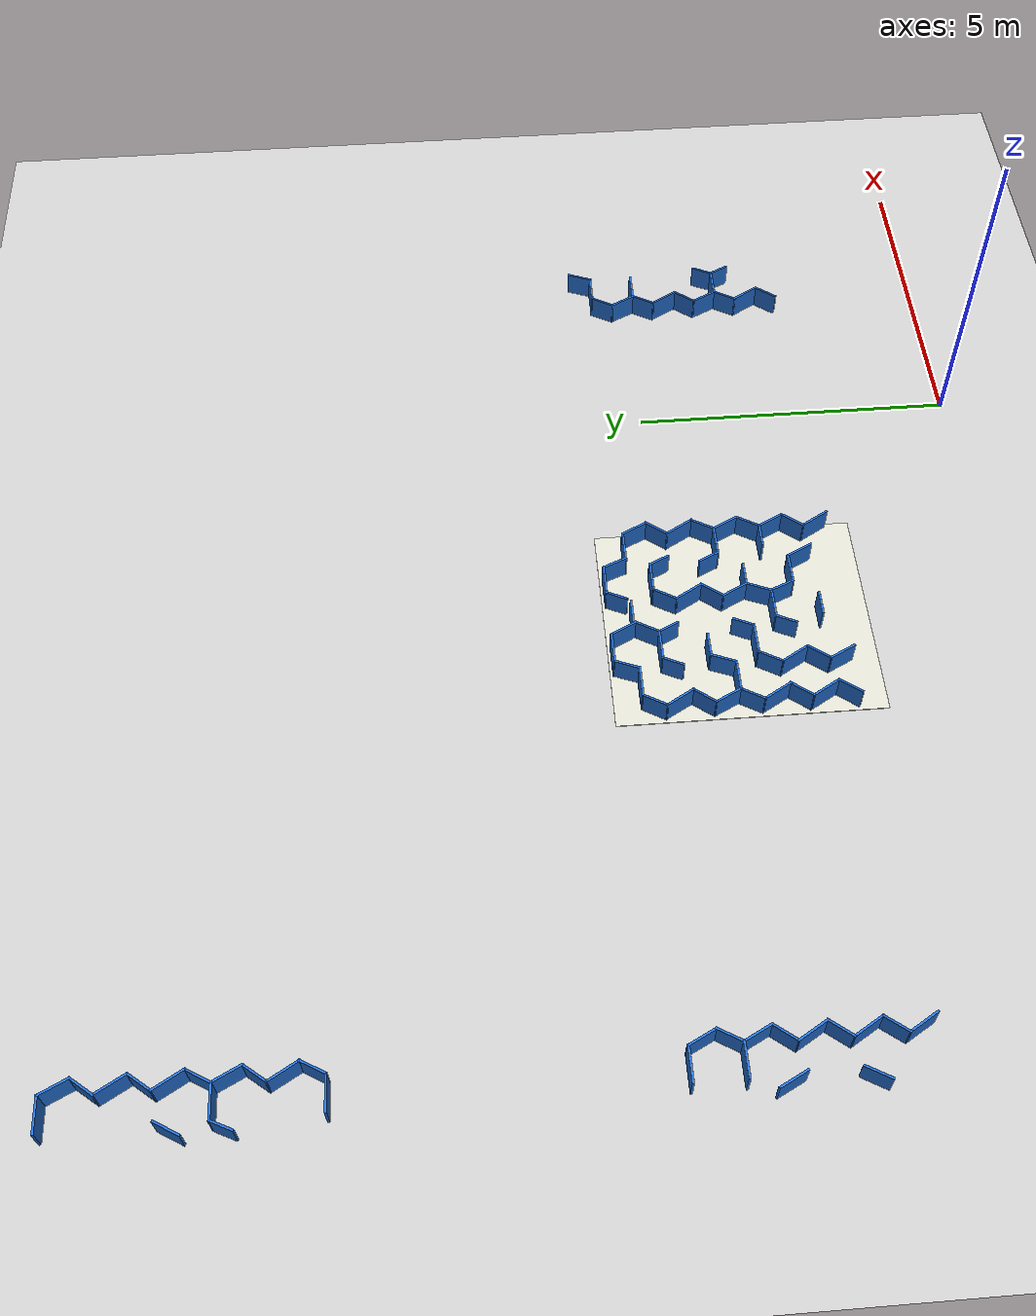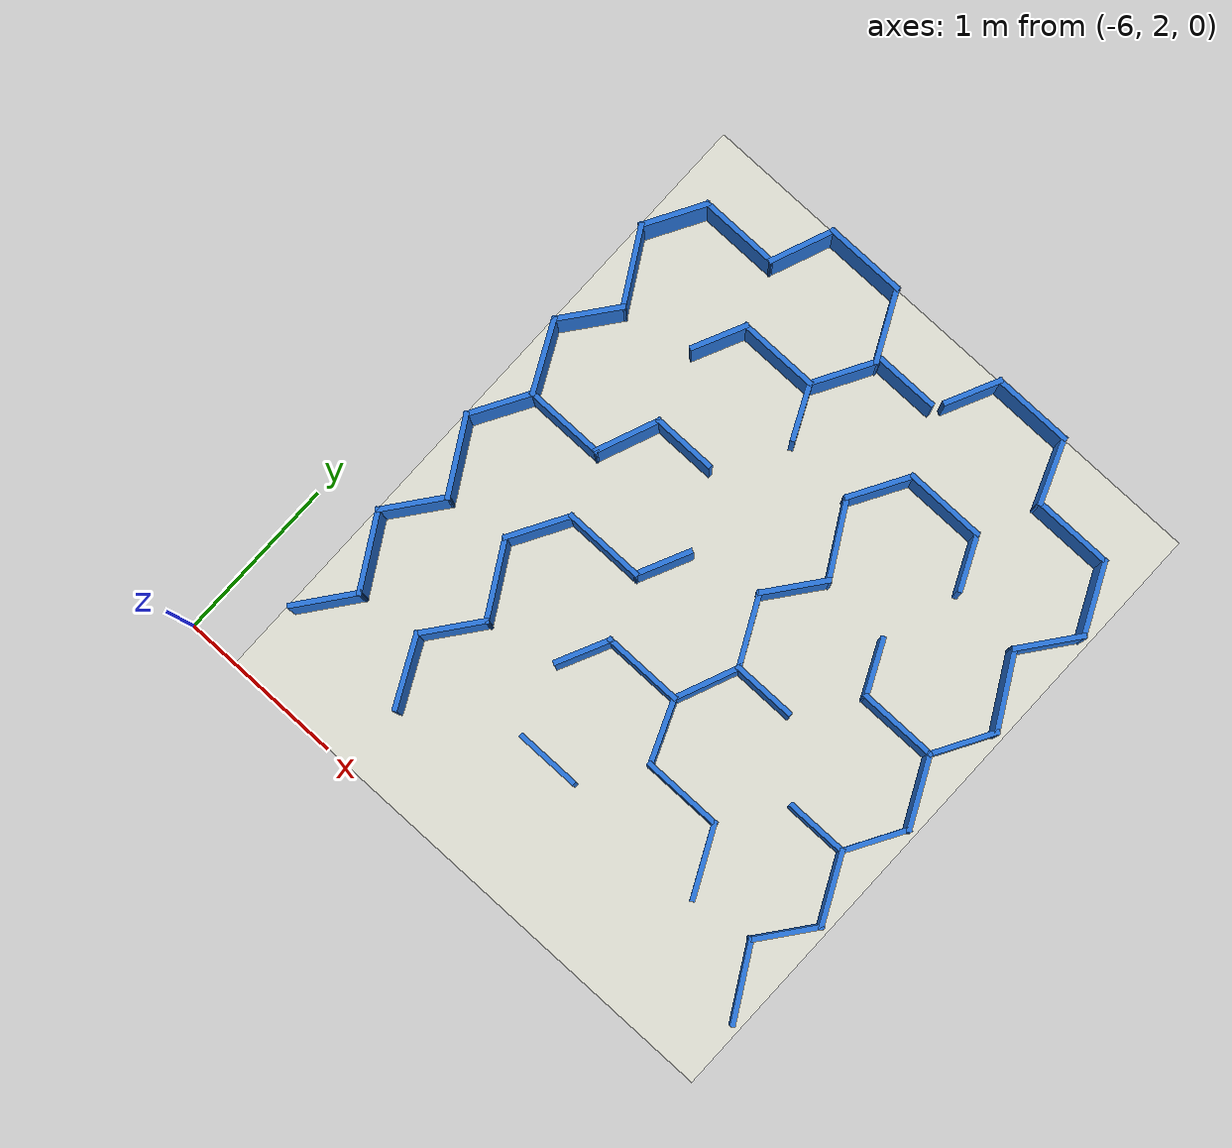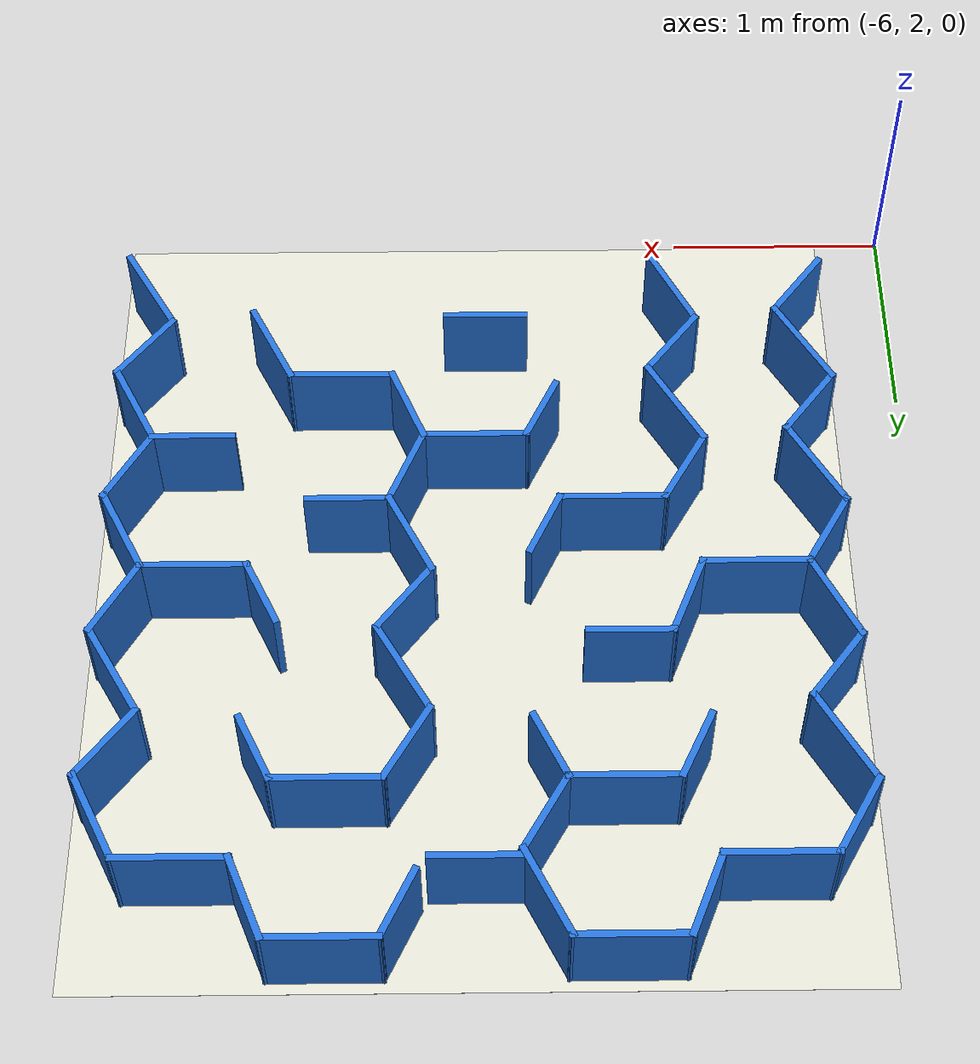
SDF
<sdf version="1.10">
 <world name="nhom8_maze_multi">
  <model name="ground_plane">
   <static>true</static>
   <link name="link">
    <collision name="collision">
     <geometry><plane><normal>0 0 1</normal><size>80.0 80.0</size></plane></geometry>
     <surface><friction><ode><mu>40</mu></ode></friction></surface>
    </collision>
    <visual name="visual">
     <geometry><plane><normal>0 0 1</normal><size>80.0 80.0</size></plane></geometry>
     <material>
      <ambient>0.8 0.8 0.8 1</ambient>
      <diffuse>0.8 0.8 0.8 1</diffuse>
      <specular>0.8 0.8 0.8 1</specular>
     </material>
    </visual>
   </link>
  </model>
  <model name="sigma_1_wall_003">
   <static>true</static>
   <pose>-10.782750 5.585700 0.2000 0 0 0.000000</pose>
   <link name="link">
    <collision name="col"><geometry><box><size>0.4973 0.0300 0.4000</size></box></geometry></collision>
    <visual name="vis">
     <geometry><box><size>0.4973 0.0300 0.4000</size></box></geometry>
     <material><ambient>0.15 0.45 0.85 1</ambient><diffuse>0.15 0.45 0.85 1</diffuse></material>
    </visual>
   </link>
  </model>
  <model name="sigma_1_wall_006">
   <static>true</static>
   <pose>-10.784100 4.885000 0.2000 0 0 0.000000</pose>
   <link name="link">
    <collision name="col"><geometry><box><size>0.4964 0.0300 0.4000</size></box></geometry></collision>
    <visual name="vis">
     <geometry><box><size>0.4964 0.0300 0.4000</size></box></geometry>
     <material><ambient>0.15 0.45 0.85 1</ambient><diffuse>0.15 0.45 0.85 1</diffuse></material>
    </visual>
   </link>
  </model>
  <model name="sigma_1_wall_018">
   <static>true</static>
   <pose>-10.456050 5.396800 0.2000 0 0 -1.113098</pose>
   <link name="link">
    <collision name="col"><geometry><box><size>0.4510 0.0300 0.4000</size></box></geometry></collision>
    <visual name="vis">
     <geometry><box><size>0.4510 0.0300 0.4000</size></box></geometry>
     <material><ambient>0.15 0.45 0.85 1</ambient><diffuse>0.15 0.45 0.85 1</diffuse></material>
    </visual>
   </link>
  </model>
  <model name="sigma_1_wall_020">
   <static>true</static>
   <pose>-10.456400 4.695000 0.2000 0 0 -1.109117</pose>
   <link name="link">
    <collision name="col"><geometry><box><size>0.4544 0.0300 0.4000</size></box></geometry></collision>
    <visual name="vis">
     <geometry><box><size>0.4544 0.0300 0.4000</size></box></geometry>
     <material><ambient>0.15 0.45 0.85 1</ambient><diffuse>0.15 0.45 0.85 1</diffuse></material>
    </visual>
   </link>
  </model>
  <model name="sigma_1_wall_022">
   <static>true</static>
   <pose>-10.477650 4.002950 0.2000 0 0 -1.047161</pose>
   <link name="link">
    <collision name="col"><geometry><box><size>0.4946 0.0300 0.4000</size></box></geometry></collision>
    <visual name="vis">
     <geometry><box><size>0.4946 0.0300 0.4000</size></box></geometry>
     <material><ambient>0.15 0.45 0.85 1</ambient><diffuse>0.15 0.45 0.85 1</diffuse></material>
    </visual>
   </link>
  </model>
  <model name="sigma_1_wall_023">
   <static>true</static>
   <pose>-11.064350 4.341900 0.2000 0 0 -1.111119</pose>
   <link name="link">
    <collision name="col"><geometry><box><size>0.4506 0.0300 0.4000</size></box></geometry></collision>
    <visual name="vis">
     <geometry><box><size>0.4506 0.0300 0.4000</size></box></geometry>
     <material><ambient>0.15 0.45 0.85 1</ambient><diffuse>0.15 0.45 0.85 1</diffuse></material>
    </visual>
   </link>
  </model>
  <model name="sigma_1_wall_024">
   <static>true</static>
   <pose>-10.478650 3.300350 0.2000 0 0 -1.047161</pose>
   <link name="link">
    <collision name="col"><geometry><box><size>0.4946 0.0300 0.4000</size></box></geometry></collision>
    <visual name="vis">
     <geometry><box><size>0.4946 0.0300 0.4000</size></box></geometry>
     <material><ambient>0.15 0.45 0.85 1</ambient><diffuse>0.15 0.45 0.85 1</diffuse></material>
    </visual>
   </link>
  </model>
  <model name="sigma_1_wall_028">
   <static>true</static>
   <pose>-10.477850 2.597050 0.2000 0 0 -1.047171</pose>
   <link name="link">
    <collision name="col"><geometry><box><size>0.4902 0.0300 0.4000</size></box></geometry></collision>
    <visual name="vis">
     <geometry><box><size>0.4902 0.0300 0.4000</size></box></geometry>
     <material><ambient>0.15 0.45 0.85 1</ambient><diffuse>0.15 0.45 0.85 1</diffuse></material>
    </visual>
   </link>
  </model>
  <model name="sigma_1_wall_043">
   <static>true</static>
   <pose>-10.477700 2.947750 0.2000 0 0 0.920329</pose>
   <link name="link">
    <collision name="col"><geometry><box><size>0.4105 0.0300 0.4000</size></box></geometry></collision>
    <visual name="vis">
     <geometry><box><size>0.4105 0.0300 0.4000</size></box></geometry>
     <material><ambient>0.15 0.45 0.85 1</ambient><diffuse>0.15 0.45 0.85 1</diffuse></material>
    </visual>
   </link>
  </model>
  <model name="sigma_1_wall_044">
   <static>true</static>
   <pose>-10.478150 3.651650 0.2000 0 0 0.910181</pose>
   <link name="link">
    <collision name="col"><geometry><box><size>0.4102 0.0300 0.4000</size></box></geometry></collision>
    <visual name="vis">
     <geometry><box><size>0.4102 0.0300 0.4000</size></box></geometry>
     <material><ambient>0.15 0.45 0.85 1</ambient><diffuse>0.15 0.45 0.85 1</diffuse></material>
    </visual>
   </link>
  </model>
  <model name="sigma_1_wall_046">
   <static>true</static>
   <pose>-10.477800 4.354550 0.2000 0 0 0.914268</pose>
   <link name="link">
    <collision name="col"><geometry><box><size>0.4099 0.0300 0.4000</size></box></geometry></collision>
    <visual name="vis">
     <geometry><box><size>0.4099 0.0300 0.4000</size></box></geometry>
     <material><ambient>0.15 0.45 0.85 1</ambient><diffuse>0.15 0.45 0.85 1</diffuse></material>
    </visual>
   </link>
  </model>
  <model name="sigma_1_wall_047">
   <static>true</static>
   <pose>-11.064250 3.288650 0.2000 0 0 1.056382</pose>
   <link name="link">
    <collision name="col"><geometry><box><size>0.4063 0.0300 0.4000</size></box></geometry></collision>
    <visual name="vis">
     <geometry><box><size>0.4063 0.0300 0.4000</size></box></geometry>
     <material><ambient>0.15 0.45 0.85 1</ambient><diffuse>0.15 0.45 0.85 1</diffuse></material>
    </visual>
   </link>
  </model>
  <model name="sigma_1_wall_049">
   <static>true</static>
   <pose>-10.456950 5.046450 0.2000 0 0 1.044059</pose>
   <link name="link">
    <collision name="col"><geometry><box><size>0.4036 0.0300 0.4000</size></box></geometry></collision>
    <visual name="vis">
     <geometry><box><size>0.4036 0.0300 0.4000</size></box></geometry>
     <material><ambient>0.15 0.45 0.85 1</ambient><diffuse>0.15 0.45 0.85 1</diffuse></material>
    </visual>
   </link>
  </model>
  <model name="sigma_2_wall_000">
   <static>true</static>
   <pose>-4.609350 5.935000 0.2000 0 0 0.000000</pose>
   <link name="link">
    <collision name="col"><geometry><box><size>0.4973 0.0300 0.4000</size></box></geometry></collision>
    <visual name="vis">
     <geometry><box><size>0.4973 0.0300 0.4000</size></box></geometry>
     <material><ambient>0.15 0.45 0.85 1</ambient><diffuse>0.15 0.45 0.85 1</diffuse></material>
    </visual>
   </link>
  </model>
  <model name="sigma_2_wall_001">
   <static>true</static>
   <pose>-3.389950 5.935000 0.2000 0 0 0.000000</pose>
   <link name="link">
    <collision name="col"><geometry><box><size>0.4965 0.0300 0.4000</size></box></geometry></collision>
    <visual name="vis">
     <geometry><box><size>0.4965 0.0300 0.4000</size></box></geometry>
     <material><ambient>0.15 0.45 0.85 1</ambient><diffuse>0.15 0.45 0.85 1</diffuse></material>
    </visual>
   </link>
  </model>
  <model name="sigma_2_wall_002">
   <static>true</static>
   <pose>-5.215300 5.585700 0.2000 0 0 0.000000</pose>
   <link name="link">
    <collision name="col"><geometry><box><size>0.4950 0.0300 0.4000</size></box></geometry></collision>
    <visual name="vis">
     <geometry><box><size>0.4950 0.0300 0.4000</size></box></geometry>
     <material><ambient>0.15 0.45 0.85 1</ambient><diffuse>0.15 0.45 0.85 1</diffuse></material>
    </visual>
   </link>
  </model>
  <model name="sigma_2_wall_003">
   <static>true</static>
   <pose>-2.782650 5.585700 0.2000 0 0 0.000000</pose>
   <link name="link">
    <collision name="col"><geometry><box><size>0.4971 0.0300 0.4000</size></box></geometry></collision>
    <visual name="vis">
     <geometry><box><size>0.4971 0.0300 0.4000</size></box></geometry>
     <material><ambient>0.15 0.45 0.85 1</ambient><diffuse>0.15 0.45 0.85 1</diffuse></material>
    </visual>
   </link>
  </model>
  <model name="sigma_2_wall_004">
   <static>true</static>
   <pose>-4.609400 5.230700 0.2000 0 0 0.000000</pose>
   <link name="link">
    <collision name="col"><geometry><box><size>0.4962 0.0300 0.4000</size></box></geometry></collision>
    <visual name="vis">
     <geometry><box><size>0.4962 0.0300 0.4000</size></box></geometry>
     <material><ambient>0.15 0.45 0.85 1</ambient><diffuse>0.15 0.45 0.85 1</diffuse></material>
    </visual>
   </link>
  </model>
  <model name="sigma_2_wall_005">
   <static>true</static>
   <pose>-3.390200 5.230700 0.2000 0 0 0.000000</pose>
   <link name="link">
    <collision name="col"><geometry><box><size>0.4958 0.0300 0.4000</size></box></geometry></collision>
    <visual name="vis">
     <geometry><box><size>0.4958 0.0300 0.4000</size></box></geometry>
     <material><ambient>0.15 0.45 0.85 1</ambient><diffuse>0.15 0.45 0.85 1</diffuse></material>
    </visual>
   </link>
  </model>
  <model name="sigma_2_wall_006">
   <static>true</static>
   <pose>-4.660800 4.529300 0.2000 0 0 0.000000</pose>
   <link name="link">
    <collision name="col"><geometry><box><size>0.3934 0.0300 0.4000</size></box></geometry></collision>
    <visual name="vis">
     <geometry><box><size>0.3934 0.0300 0.4000</size></box></geometry>
     <material><ambient>0.15 0.45 0.85 1</ambient><diffuse>0.15 0.45 0.85 1</diffuse></material>
    </visual>
   </link>
  </model>
  <model name="sigma_2_wall_007">
   <static>true</static>
   <pose>-5.216550 4.177700 0.2000 0 0 0.000000</pose>
   <link name="link">
    <collision name="col"><geometry><box><size>0.4945 0.0300 0.4000</size></box></geometry></collision>
    <visual name="vis">
     <geometry><box><size>0.4945 0.0300 0.4000</size></box></geometry>
     <material><ambient>0.15 0.45 0.85 1</ambient><diffuse>0.15 0.45 0.85 1</diffuse></material>
    </visual>
   </link>
  </model>
  <model name="sigma_2_wall_008">
   <static>true</static>
   <pose>-2.781750 4.177700 0.2000 0 0 0.000000</pose>
   <link name="link">
    <collision name="col"><geometry><box><size>0.4919 0.0300 0.4000</size></box></geometry></collision>
    <visual name="vis">
     <geometry><box><size>0.4919 0.0300 0.4000</size></box></geometry>
     <material><ambient>0.15 0.45 0.85 1</ambient><diffuse>0.15 0.45 0.85 1</diffuse></material>
    </visual>
   </link>
  </model>
  <model name="sigma_2_wall_009">
   <static>true</static>
   <pose>-4.607350 3.828700 0.2000 0 0 0.000000</pose>
   <link name="link">
    <collision name="col"><geometry><box><size>0.4975 0.0300 0.4000</size></box></geometry></collision>
    <visual name="vis">
     <geometry><box><size>0.4975 0.0300 0.4000</size></box></geometry>
     <material><ambient>0.15 0.45 0.85 1</ambient><diffuse>0.15 0.45 0.85 1</diffuse></material>
    </visual>
   </link>
  </model>
  <model name="sigma_2_wall_010">
   <static>true</static>
   <pose>-3.440050 3.828700 0.2000 0 0 0.000000</pose>
   <link name="link">
    <collision name="col"><geometry><box><size>0.3931 0.0300 0.4000</size></box></geometry></collision>
    <visual name="vis">
     <geometry><box><size>0.3931 0.0300 0.4000</size></box></geometry>
     <material><ambient>0.15 0.45 0.85 1</ambient><diffuse>0.15 0.45 0.85 1</diffuse></material>
    </visual>
   </link>
  </model>
  <model name="sigma_2_wall_011">
   <static>true</static>
   <pose>-4.000650 3.474800 0.2000 0 0 0.000000</pose>
   <link name="link">
    <collision name="col"><geometry><box><size>0.4945 0.0300 0.4000</size></box></geometry></collision>
    <visual name="vis">
     <geometry><box><size>0.4945 0.0300 0.4000</size></box></geometry>
     <material><ambient>0.15 0.45 0.85 1</ambient><diffuse>0.15 0.45 0.85 1</diffuse></material>
    </visual>
   </link>
  </model>
  <model name="sigma_2_wall_012">
   <static>true</static>
   <pose>-2.730700 3.474800 0.2000 0 0 0.000000</pose>
   <link name="link">
    <collision name="col"><geometry><box><size>0.3898 0.0300 0.4000</size></box></geometry></collision>
    <visual name="vis">
     <geometry><box><size>0.3898 0.0300 0.4000</size></box></geometry>
     <material><ambient>0.15 0.45 0.85 1</ambient><diffuse>0.15 0.45 0.85 1</diffuse></material>
    </visual>
   </link>
  </model>
  <model name="sigma_2_wall_013">
   <static>true</static>
   <pose>-3.390000 3.124400 0.2000 0 0 0.000000</pose>
   <link name="link">
    <collision name="col"><geometry><box><size>0.4964 0.0300 0.4000</size></box></geometry></collision>
    <visual name="vis">
     <geometry><box><size>0.4964 0.0300 0.4000</size></box></geometry>
     <material><ambient>0.15 0.45 0.85 1</ambient><diffuse>0.15 0.45 0.85 1</diffuse></material>
    </visual>
   </link>
  </model>
  <model name="sigma_2_wall_014">
   <static>true</static>
   <pose>-4.050600 2.772600 0.2000 0 0 0.000000</pose>
   <link name="link">
    <collision name="col"><geometry><box><size>0.3936 0.0300 0.4000</size></box></geometry></collision>
    <visual name="vis">
     <geometry><box><size>0.3936 0.0300 0.4000</size></box></geometry>
     <material><ambient>0.15 0.45 0.85 1</ambient><diffuse>0.15 0.45 0.85 1</diffuse></material>
    </visual>
   </link>
  </model>
  <model name="sigma_2_wall_019">
   <static>true</static>
   <pose>-2.456000 5.396700 0.2000 0 0 -1.113095</pose>
   <link name="link">
    <collision name="col"><geometry><box><size>0.4512 0.0300 0.4000</size></box></geometry></collision>
    <visual name="vis">
     <geometry><box><size>0.4512 0.0300 0.4000</size></box></geometry>
     <material><ambient>0.15 0.45 0.85 1</ambient><diffuse>0.15 0.45 0.85 1</diffuse></material>
    </visual>
   </link>
  </model>
  <model name="sigma_2_wall_020">
   <static>true</static>
   <pose>-3.086450 5.760300 0.2000 0 0 -1.188417</pose>
   <link name="link">
    <collision name="col"><geometry><box><size>0.4066 0.0300 0.4000</size></box></geometry></collision>
    <visual name="vis">
     <geometry><box><size>0.4066 0.0300 0.4000</size></box></geometry>
     <material><ambient>0.15 0.45 0.85 1</ambient><diffuse>0.15 0.45 0.85 1</diffuse></material>
    </visual>
   </link>
  </model>
  <model name="sigma_2_wall_021">
   <static>true</static>
   <pose>-2.477700 4.706150 0.2000 0 0 -1.047213</pose>
   <link name="link">
    <collision name="col"><geometry><box><size>0.4920 0.0300 0.4000</size></box></geometry></collision>
    <visual name="vis">
     <geometry><box><size>0.4920 0.0300 0.4000</size></box></geometry>
     <material><ambient>0.15 0.45 0.85 1</ambient><diffuse>0.15 0.45 0.85 1</diffuse></material>
    </visual>
   </link>
  </model>
  <model name="sigma_2_wall_022">
   <static>true</static>
   <pose>-3.089650 5.087700 0.2000 0 0 -1.129095</pose>
   <link name="link">
    <collision name="col"><geometry><box><size>0.3465 0.0300 0.4000</size></box></geometry></collision>
    <visual name="vis">
     <geometry><box><size>0.3465 0.0300 0.4000</size></box></geometry>
     <material><ambient>0.15 0.45 0.85 1</ambient><diffuse>0.15 0.45 0.85 1</diffuse></material>
    </visual>
   </link>
  </model>
  <model name="sigma_2_wall_023">
   <static>true</static>
   <pose>-2.456150 3.989300 0.2000 0 0 -1.104971</pose>
   <link name="link">
    <collision name="col"><geometry><box><size>0.4517 0.0300 0.4000</size></box></geometry></collision>
    <visual name="vis">
     <geometry><box><size>0.4517 0.0300 0.4000</size></box></geometry>
     <material><ambient>0.15 0.45 0.85 1</ambient><diffuse>0.15 0.45 0.85 1</diffuse></material>
    </visual>
   </link>
  </model>
  <model name="sigma_2_wall_024">
   <static>true</static>
   <pose>-3.082050 4.322550 0.2000 0 0 -1.124088</pose>
   <link name="link">
    <collision name="col"><geometry><box><size>0.3512 0.0300 0.4000</size></box></geometry></collision>
    <visual name="vis">
     <geometry><box><size>0.3512 0.0300 0.4000</size></box></geometry>
     <material><ambient>0.15 0.45 0.85 1</ambient><diffuse>0.15 0.45 0.85 1</diffuse></material>
    </visual>
   </link>
  </model>
  <model name="sigma_2_wall_025">
   <static>true</static>
   <pose>-2.456000 3.286800 0.2000 0 0 -1.103580</pose>
   <link name="link">
    <collision name="col"><geometry><box><size>0.4512 0.0300 0.4000</size></box></geometry></collision>
    <visual name="vis">
     <geometry><box><size>0.4512 0.0300 0.4000</size></box></geometry>
     <material><ambient>0.15 0.45 0.85 1</ambient><diffuse>0.15 0.45 0.85 1</diffuse></material>
    </visual>
   </link>
  </model>
  <model name="sigma_2_wall_026">
   <static>true</static>
   <pose>-4.282150 5.747350 0.2000 0 0 -1.108244</pose>
   <link name="link">
    <collision name="col"><geometry><box><size>0.4493 0.0300 0.4000</size></box></geometry></collision>
    <visual name="vis">
     <geometry><box><size>0.4493 0.0300 0.4000</size></box></geometry>
     <material><ambient>0.15 0.45 0.85 1</ambient><diffuse>0.15 0.45 0.85 1</diffuse></material>
    </visual>
   </link>
  </model>
  <model name="sigma_2_wall_027">
   <static>true</static>
   <pose>-3.695450 4.705400 0.2000 0 0 -1.047233</pose>
   <link name="link">
    <collision name="col"><geometry><box><size>0.4914 0.0300 0.4000</size></box></geometry></collision>
    <visual name="vis">
     <geometry><box><size>0.4914 0.0300 0.4000</size></box></geometry>
     <material><ambient>0.15 0.45 0.85 1</ambient><diffuse>0.15 0.45 0.85 1</diffuse></material>
    </visual>
   </link>
  </model>
  <model name="sigma_2_wall_028">
   <static>true</static>
   <pose>-2.478050 2.596950 0.2000 0 0 -1.047171</pose>
   <link name="link">
    <collision name="col"><geometry><box><size>0.4902 0.0300 0.4000</size></box></geometry></collision>
    <visual name="vis">
     <geometry><box><size>0.4902 0.0300 0.4000</size></box></geometry>
     <material><ambient>0.15 0.45 0.85 1</ambient><diffuse>0.15 0.45 0.85 1</diffuse></material>
    </visual>
   </link>
  </model>
  <model name="sigma_2_wall_029">
   <static>true</static>
   <pose>-4.307550 5.087500 0.2000 0 0 -1.123619</pose>
   <link name="link">
    <collision name="col"><geometry><box><size>0.3476 0.0300 0.4000</size></box></geometry></collision>
    <visual name="vis">
     <geometry><box><size>0.3476 0.0300 0.4000</size></box></geometry>
     <material><ambient>0.15 0.45 0.85 1</ambient><diffuse>0.15 0.45 0.85 1</diffuse></material>
    </visual>
   </link>
  </model>
  <model name="sigma_2_wall_030">
   <static>true</static>
   <pose>-3.716600 4.016450 0.2000 0 0 -1.102289</pose>
   <link name="link">
    <collision name="col"><geometry><box><size>0.4509 0.0300 0.4000</size></box></geometry></collision>
    <visual name="vis">
     <geometry><box><size>0.4509 0.0300 0.4000</size></box></geometry>
     <material><ambient>0.15 0.45 0.85 1</ambient><diffuse>0.15 0.45 0.85 1</diffuse></material>
    </visual>
   </link>
  </model>
  <model name="sigma_2_wall_031">
   <static>true</static>
   <pose>-3.063250 2.935250 0.2000 0 0 -1.111205</pose>
   <link name="link">
    <collision name="col"><geometry><box><size>0.4520 0.0300 0.4000</size></box></geometry></collision>
    <visual name="vis">
     <geometry><box><size>0.4520 0.0300 0.4000</size></box></geometry>
     <material><ambient>0.15 0.45 0.85 1</ambient><diffuse>0.15 0.45 0.85 1</diffuse></material>
    </visual>
   </link>
  </model>
  <model name="sigma_2_wall_032">
   <static>true</static>
   <pose>-3.695850 3.299600 0.2000 0 0 -1.177997</pose>
   <link name="link">
    <collision name="col"><geometry><box><size>0.4094 0.0300 0.4000</size></box></geometry></collision>
    <visual name="vis">
     <geometry><box><size>0.4094 0.0300 0.4000</size></box></geometry>
     <material><ambient>0.15 0.45 0.85 1</ambient><diffuse>0.15 0.45 0.85 1</diffuse></material>
    </visual>
   </link>
  </model>
  <model name="sigma_2_wall_034">
   <static>true</static>
   <pose>-5.521050 5.056700 0.2000 0 0 -1.047233</pose>
   <link name="link">
    <collision name="col"><geometry><box><size>0.4914 0.0300 0.4000</size></box></geometry></collision>
    <visual name="vis">
     <geometry><box><size>0.4914 0.0300 0.4000</size></box></geometry>
     <material><ambient>0.15 0.45 0.85 1</ambient><diffuse>0.15 0.45 0.85 1</diffuse></material>
    </visual>
   </link>
  </model>
  <model name="sigma_2_wall_035">
   <static>true</static>
   <pose>-5.543250 4.366850 0.2000 0 0 -1.107643</pose>
   <link name="link">
    <collision name="col"><geometry><box><size>0.4528 0.0300 0.4000</size></box></geometry></collision>
    <visual name="vis">
     <geometry><box><size>0.4528 0.0300 0.4000</size></box></geometry>
     <material><ambient>0.15 0.45 0.85 1</ambient><diffuse>0.15 0.45 0.85 1</diffuse></material>
    </visual>
   </link>
  </model>
  <model name="sigma_2_wall_036">
   <static>true</static>
   <pose>-4.912550 3.300200 0.2000 0 0 -1.047248</pose>
   <link name="link">
    <collision name="col"><geometry><box><size>0.4930 0.0300 0.4000</size></box></geometry></collision>
    <visual name="vis">
     <geometry><box><size>0.4930 0.0300 0.4000</size></box></geometry>
     <material><ambient>0.15 0.45 0.85 1</ambient><diffuse>0.15 0.45 0.85 1</diffuse></material>
    </visual>
   </link>
  </model>
  <model name="sigma_2_wall_038">
   <static>true</static>
   <pose>-5.521550 3.652150 0.2000 0 0 -1.047146</pose>
   <link name="link">
    <collision name="col"><geometry><box><size>0.4930 0.0300 0.4000</size></box></geometry></collision>
    <visual name="vis">
     <geometry><box><size>0.4930 0.0300 0.4000</size></box></geometry>
     <material><ambient>0.15 0.45 0.85 1</ambient><diffuse>0.15 0.45 0.85 1</diffuse></material>
    </visual>
   </link>
  </model>
  <model name="sigma_2_wall_039">
   <static>true</static>
   <pose>-4.933800 2.608550 0.2000 0 0 -1.107445</pose>
   <link name="link">
    <collision name="col"><geometry><box><size>0.4524 0.0300 0.4000</size></box></geometry></collision>
    <visual name="vis">
     <geometry><box><size>0.4524 0.0300 0.4000</size></box></geometry>
     <material><ambient>0.15 0.45 0.85 1</ambient><diffuse>0.15 0.45 0.85 1</diffuse></material>
    </visual>
   </link>
  </model>
  <model name="sigma_2_wall_040">
   <static>true</static>
   <pose>-5.521850 2.949250 0.2000 0 0 -1.047092</pose>
   <link name="link">
    <collision name="col"><geometry><box><size>0.4925 0.0300 0.4000</size></box></geometry></collision>
    <visual name="vis">
     <geometry><box><size>0.4925 0.0300 0.4000</size></box></geometry>
     <material><ambient>0.15 0.45 0.85 1</ambient><diffuse>0.15 0.45 0.85 1</diffuse></material>
    </visual>
   </link>
  </model>
  <model name="sigma_2_wall_043">
   <static>true</static>
   <pose>-2.477150 2.947500 0.2000 0 0 0.916598</pose>
   <link name="link">
    <collision name="col"><geometry><box><size>0.4113 0.0300 0.4000</size></box></geometry></collision>
    <visual name="vis">
     <geometry><box><size>0.4113 0.0300 0.4000</size></box></geometry>
     <material><ambient>0.15 0.45 0.85 1</ambient><diffuse>0.15 0.45 0.85 1</diffuse></material>
    </visual>
   </link>
  </model>
  <model name="sigma_2_wall_044">
   <static>true</static>
   <pose>-2.456150 3.637850 0.2000 0 0 1.044613</pose>
   <link name="link">
    <collision name="col"><geometry><box><size>0.4072 0.0300 0.4000</size></box></geometry></collision>
    <visual name="vis">
     <geometry><box><size>0.4072 0.0300 0.4000</size></box></geometry>
     <material><ambient>0.15 0.45 0.85 1</ambient><diffuse>0.15 0.45 0.85 1</diffuse></material>
    </visual>
   </link>
  </model>
  <model name="sigma_2_wall_046">
   <static>true</static>
   <pose>-2.456500 4.341900 0.2000 0 0 1.049344</pose>
   <link name="link">
    <collision name="col"><geometry><box><size>0.4087 0.0300 0.4000</size></box></geometry></collision>
    <visual name="vis">
     <geometry><box><size>0.4087 0.0300 0.4000</size></box></geometry>
     <material><ambient>0.15 0.45 0.85 1</ambient><diffuse>0.15 0.45 0.85 1</diffuse></material>
    </visual>
   </link>
  </model>
  <model name="sigma_2_wall_048">
   <static>true</static>
   <pose>-2.478050 5.057000 0.2000 0 0 0.918600</pose>
   <link name="link">
    <collision name="col"><geometry><box><size>0.4094 0.0300 0.4000</size></box></geometry></collision>
    <visual name="vis">
     <geometry><box><size>0.4094 0.0300 0.4000</size></box></geometry>
     <material><ambient>0.15 0.45 0.85 1</ambient><diffuse>0.15 0.45 0.85 1</diffuse></material>
    </visual>
   </link>
  </model>
  <model name="sigma_2_wall_049">
   <static>true</static>
   <pose>-3.695050 3.651750 0.2000 0 0 1.177476</pose>
   <link name="link">
    <collision name="col"><geometry><box><size>0.4130 0.0300 0.4000</size></box></geometry></collision>
    <visual name="vis">
     <geometry><box><size>0.4130 0.0300 0.4000</size></box></geometry>
     <material><ambient>0.15 0.45 0.85 1</ambient><diffuse>0.15 0.45 0.85 1</diffuse></material>
    </visual>
   </link>
  </model>
  <model name="sigma_2_wall_051">
   <static>true</static>
   <pose>-3.695800 4.354900 0.2000 0 0 0.915785</pose>
   <link name="link">
    <collision name="col"><geometry><box><size>0.4101 0.0300 0.4000</size></box></geometry></collision>
    <visual name="vis">
     <geometry><box><size>0.4101 0.0300 0.4000</size></box></geometry>
     <material><ambient>0.15 0.45 0.85 1</ambient><diffuse>0.15 0.45 0.85 1</diffuse></material>
    </visual>
   </link>
  </model>
  <model name="sigma_2_wall_052">
   <static>true</static>
   <pose>-4.301300 3.330750 0.2000 0 0 1.127264</pose>
   <link name="link">
    <collision name="col"><geometry><box><size>0.3491 0.0300 0.4000</size></box></geometry></collision>
    <visual name="vis">
     <geometry><box><size>0.3491 0.0300 0.4000</size></box></geometry>
     <material><ambient>0.15 0.45 0.85 1</ambient><diffuse>0.15 0.45 0.85 1</diffuse></material>
    </visual>
   </link>
  </model>
  <model name="sigma_2_wall_054">
   <static>true</static>
   <pose>-3.716950 5.067950 0.2000 0 0 1.047707</pose>
   <link name="link">
    <collision name="col"><geometry><box><size>0.4058 0.0300 0.4000</size></box></geometry></collision>
    <visual name="vis">
     <geometry><box><size>0.4058 0.0300 0.4000</size></box></geometry>
     <material><ambient>0.15 0.45 0.85 1</ambient><diffuse>0.15 0.45 0.85 1</diffuse></material>
    </visual>
   </link>
  </model>
  <model name="sigma_2_wall_055">
   <static>true</static>
   <pose>-4.306000 3.972500 0.2000 0 0 1.131841</pose>
   <link name="link">
    <collision name="col"><geometry><box><size>0.3478 0.0300 0.4000</size></box></geometry></collision>
    <visual name="vis">
     <geometry><box><size>0.3478 0.0300 0.4000</size></box></geometry>
     <material><ambient>0.15 0.45 0.85 1</ambient><diffuse>0.15 0.45 0.85 1</diffuse></material>
    </visual>
   </link>
  </model>
  <model name="sigma_2_wall_056">
   <static>true</static>
   <pose>-4.912550 2.948600 0.2000 0 0 0.917165</pose>
   <link name="link">
    <collision name="col"><geometry><box><size>0.4106 0.0300 0.4000</size></box></geometry></collision>
    <visual name="vis">
     <geometry><box><size>0.4106 0.0300 0.4000</size></box></geometry>
     <material><ambient>0.15 0.45 0.85 1</ambient><diffuse>0.15 0.45 0.85 1</diffuse></material>
    </visual>
   </link>
  </model>
  <model name="sigma_2_wall_057">
   <static>true</static>
   <pose>-3.691400 5.791250 0.2000 0 0 1.127316</pose>
   <link name="link">
    <collision name="col"><geometry><box><size>0.3482 0.0300 0.4000</size></box></geometry></collision>
    <visual name="vis">
     <geometry><box><size>0.3482 0.0300 0.4000</size></box></geometry>
     <material><ambient>0.15 0.45 0.85 1</ambient><diffuse>0.15 0.45 0.85 1</diffuse></material>
    </visual>
   </link>
  </model>
  <model name="sigma_2_wall_058">
   <static>true</static>
   <pose>-4.934700 3.664650 0.2000 0 0 1.051954</pose>
   <link name="link">
    <collision name="col"><geometry><box><size>0.4078 0.0300 0.4000</size></box></geometry></collision>
    <visual name="vis">
     <geometry><box><size>0.4078 0.0300 0.4000</size></box></geometry>
     <material><ambient>0.15 0.45 0.85 1</ambient><diffuse>0.15 0.45 0.85 1</diffuse></material>
    </visual>
   </link>
  </model>
  <model name="sigma_2_wall_059">
   <static>true</static>
   <pose>-5.521150 2.597700 0.2000 0 0 0.921244</pose>
   <link name="link">
    <collision name="col"><geometry><box><size>0.4099 0.0300 0.4000</size></box></geometry></collision>
    <visual name="vis">
     <geometry><box><size>0.4099 0.0300 0.4000</size></box></geometry>
     <material><ambient>0.15 0.45 0.85 1</ambient><diffuse>0.15 0.45 0.85 1</diffuse></material>
    </visual>
   </link>
  </model>
  <model name="sigma_2_wall_060">
   <static>true</static>
   <pose>-4.282400 5.395200 0.2000 0 0 1.052196</pose>
   <link name="link">
    <collision name="col"><geometry><box><size>0.4087 0.0300 0.4000</size></box></geometry></collision>
    <visual name="vis">
     <geometry><box><size>0.4087 0.0300 0.4000</size></box></geometry>
     <material><ambient>0.15 0.45 0.85 1</ambient><diffuse>0.15 0.45 0.85 1</diffuse></material>
    </visual>
   </link>
  </model>
  <model name="sigma_2_wall_061">
   <static>true</static>
   <pose>-4.913400 4.353500 0.2000 0 0 1.187476</pose>
   <link name="link">
    <collision name="col"><geometry><box><size>0.4091 0.0300 0.4000</size></box></geometry></collision>
    <visual name="vis">
     <geometry><box><size>0.4091 0.0300 0.4000</size></box></geometry>
     <material><ambient>0.15 0.45 0.85 1</ambient><diffuse>0.15 0.45 0.85 1</diffuse></material>
    </visual>
   </link>
  </model>
  <model name="sigma_2_wall_062">
   <static>true</static>
   <pose>-5.521650 3.300600 0.2000 0 0 0.916778</pose>
   <link name="link">
    <collision name="col"><geometry><box><size>0.4108 0.0300 0.4000</size></box></geometry></collision>
    <visual name="vis">
     <geometry><box><size>0.4108 0.0300 0.4000</size></box></geometry>
     <material><ambient>0.15 0.45 0.85 1</ambient><diffuse>0.15 0.45 0.85 1</diffuse></material>
    </visual>
   </link>
  </model>
  <model name="sigma_2_wall_063">
   <static>true</static>
   <pose>-4.909850 5.087900 0.2000 0 0 1.130169</pose>
   <link name="link">
    <collision name="col"><geometry><box><size>0.3458 0.0300 0.4000</size></box></geometry></collision>
    <visual name="vis">
     <geometry><box><size>0.3458 0.0300 0.4000</size></box></geometry>
     <material><ambient>0.15 0.45 0.85 1</ambient><diffuse>0.15 0.45 0.85 1</diffuse></material>
    </visual>
   </link>
  </model>
  <model name="sigma_2_wall_064">
   <static>true</static>
   <pose>-5.543050 4.015150 0.2000 0 0 1.045507</pose>
   <link name="link">
    <collision name="col"><geometry><box><size>0.4058 0.0300 0.4000</size></box></geometry></collision>
    <visual name="vis">
     <geometry><box><size>0.4058 0.0300 0.4000</size></box></geometry>
     <material><ambient>0.15 0.45 0.85 1</ambient><diffuse>0.15 0.45 0.85 1</diffuse></material>
    </visual>
   </link>
  </model>
  <model name="sigma_2_wall_065">
   <static>true</static>
   <pose>-4.912950 5.760300 0.2000 0 0 1.190244</pose>
   <link name="link">
    <collision name="col"><geometry><box><size>0.4063 0.0300 0.4000</size></box></geometry></collision>
    <visual name="vis">
     <geometry><box><size>0.4063 0.0300 0.4000</size></box></geometry>
     <material><ambient>0.15 0.45 0.85 1</ambient><diffuse>0.15 0.45 0.85 1</diffuse></material>
    </visual>
   </link>
  </model>
  <model name="sigma_2_wall_066">
   <static>true</static>
   <pose>-5.521700 4.706450 0.2000 0 0 0.914268</pose>
   <link name="link">
    <collision name="col"><geometry><box><size>0.4099 0.0300 0.4000</size></box></geometry></collision>
    <visual name="vis">
     <geometry><box><size>0.4099 0.0300 0.4000</size></box></geometry>
     <material><ambient>0.15 0.45 0.85 1</ambient><diffuse>0.15 0.45 0.85 1</diffuse></material>
    </visual>
   </link>
  </model>
  <model name="sigma_2_wall_067">
   <static>true</static>
   <pose>-5.542100 5.421100 0.2000 0 0 1.050317</pose>
   <link name="link">
    <collision name="col"><geometry><box><size>0.4094 0.0300 0.4000</size></box></geometry></collision>
    <visual name="vis">
     <geometry><box><size>0.4094 0.0300 0.4000</size></box></geometry>
     <material><ambient>0.15 0.45 0.85 1</ambient><diffuse>0.15 0.45 0.85 1</diffuse></material>
    </visual>
   </link>
  </model>
  <model name="sigma_2_wall_068">
   <static>true</static>
   <pose>-3.997100 5.588500 0.2000 0 0 0.000000</pose>
   <link name="link">
    <collision name="col"><geometry><box><size>0.3966 0.0300 0.4000</size></box></geometry></collision>
    <visual name="vis">
     <geometry><box><size>0.3966 0.0300 0.4000</size></box></geometry>
     <material><ambient>0.15 0.45 0.85 1</ambient><diffuse>0.15 0.45 0.85 1</diffuse></material>
    </visual>
   </link>
  </model>
  <model name="sigma_2_floor">
   <static>true</static>
   <pose>-4.000000 4.000000 -0.02 0 0 0</pose>
   <link name="link">
    <collision name="col"><geometry><box><size>3.3948 3.9890 0.03</size></box></geometry></collision>
    <visual name="vis">
     <geometry><box><size>3.3948 3.9890 0.03</size></box></geometry>
     <material><ambient>0.87 0.87 0.82 1</ambient><diffuse>0.87 0.87 0.82 1</diffuse></material>
    </visual>
   </link>
  </model>
  <model name="sigma_3_wall_002">
   <static>true</static>
   <pose>2.784750 5.585700 0.2000 0 0 0.000000</pose>
   <link name="link">
    <collision name="col"><geometry><box><size>0.4951 0.0300 0.4000</size></box></geometry></collision>
    <visual name="vis">
     <geometry><box><size>0.4951 0.0300 0.4000</size></box></geometry>
     <material><ambient>0.15 0.45 0.85 1</ambient><diffuse>0.15 0.45 0.85 1</diffuse></material>
    </visual>
   </link>
  </model>
  <model name="sigma_3_wall_005">
   <static>true</static>
   <pose>2.784350 4.885000 0.2000 0 0 0.000000</pose>
   <link name="link">
    <collision name="col"><geometry><box><size>0.4963 0.0300 0.4000</size></box></geometry></collision>
    <visual name="vis">
     <geometry><box><size>0.4963 0.0300 0.4000</size></box></geometry>
     <material><ambient>0.15 0.45 0.85 1</ambient><diffuse>0.15 0.45 0.85 1</diffuse></material>
    </visual>
   </link>
  </model>
  <model name="sigma_3_wall_010">
   <static>true</static>
   <pose>2.782050 3.475600 0.2000 0 0 0.000000</pose>
   <link name="link">
    <collision name="col"><geometry><box><size>0.4929 0.0300 0.4000</size></box></geometry></collision>
    <visual name="vis">
     <geometry><box><size>0.4929 0.0300 0.4000</size></box></geometry>
     <material><ambient>0.15 0.45 0.85 1</ambient><diffuse>0.15 0.45 0.85 1</diffuse></material>
    </visual>
   </link>
  </model>
  <model name="sigma_3_wall_034">
   <static>true</static>
   <pose>2.457350 5.071300 0.2000 0 0 -1.103949</pose>
   <link name="link">
    <collision name="col"><geometry><box><size>0.4473 0.0300 0.4000</size></box></geometry></collision>
    <visual name="vis">
     <geometry><box><size>0.4473 0.0300 0.4000</size></box></geometry>
     <material><ambient>0.15 0.45 0.85 1</ambient><diffuse>0.15 0.45 0.85 1</diffuse></material>
    </visual>
   </link>
  </model>
  <model name="sigma_3_wall_036">
   <static>true</static>
   <pose>2.478400 4.354700 0.2000 0 0 -1.047112</pose>
   <link name="link">
    <collision name="col"><geometry><box><size>0.4919 0.0300 0.4000</size></box></geometry></collision>
    <visual name="vis">
     <geometry><box><size>0.4919 0.0300 0.4000</size></box></geometry>
     <material><ambient>0.15 0.45 0.85 1</ambient><diffuse>0.15 0.45 0.85 1</diffuse></material>
    </visual>
   </link>
  </model>
  <model name="sigma_3_wall_037">
   <static>true</static>
   <pose>3.082900 3.331550 0.2000 0 0 -1.121854</pose>
   <link name="link">
    <collision name="col"><geometry><box><size>0.3498 0.0300 0.4000</size></box></geometry></collision>
    <visual name="vis">
     <geometry><box><size>0.3498 0.0300 0.4000</size></box></geometry>
     <material><ambient>0.15 0.45 0.85 1</ambient><diffuse>0.15 0.45 0.85 1</diffuse></material>
    </visual>
   </link>
  </model>
  <model name="sigma_3_wall_039">
   <static>true</static>
   <pose>2.456250 3.664700 0.2000 0 0 -1.107939</pose>
   <link name="link">
    <collision name="col"><geometry><box><size>0.4526 0.0300 0.4000</size></box></geometry></collision>
    <visual name="vis">
     <geometry><box><size>0.4526 0.0300 0.4000</size></box></geometry>
     <material><ambient>0.15 0.45 0.85 1</ambient><diffuse>0.15 0.45 0.85 1</diffuse></material>
    </visual>
   </link>
  </model>
  <model name="sigma_3_wall_041">
   <static>true</static>
   <pose>2.478200 2.949150 0.2000 0 0 -1.047213</pose>
   <link name="link">
    <collision name="col"><geometry><box><size>0.4920 0.0300 0.4000</size></box></geometry></collision>
    <visual name="vis">
     <geometry><box><size>0.4920 0.0300 0.4000</size></box></geometry>
     <material><ambient>0.15 0.45 0.85 1</ambient><diffuse>0.15 0.45 0.85 1</diffuse></material>
    </visual>
   </link>
  </model>
  <model name="sigma_3_wall_059">
   <static>true</static>
   <pose>3.083300 3.620250 0.2000 0 0 1.121284</pose>
   <link name="link">
    <collision name="col"><geometry><box><size>0.3512 0.0300 0.4000</size></box></geometry></collision>
    <visual name="vis">
     <geometry><box><size>0.3512 0.0300 0.4000</size></box></geometry>
     <material><ambient>0.15 0.45 0.85 1</ambient><diffuse>0.15 0.45 0.85 1</diffuse></material>
    </visual>
   </link>
  </model>
  <model name="sigma_3_wall_060">
   <static>true</static>
   <pose>2.478800 2.597850 0.2000 0 0 0.921198</pose>
   <link name="link">
    <collision name="col"><geometry><box><size>0.4100 0.0300 0.4000</size></box></geometry></collision>
    <visual name="vis">
     <geometry><box><size>0.4100 0.0300 0.4000</size></box></geometry>
     <material><ambient>0.15 0.45 0.85 1</ambient><diffuse>0.15 0.45 0.85 1</diffuse></material>
    </visual>
   </link>
  </model>
  <model name="sigma_3_wall_062">
   <static>true</static>
   <pose>2.456650 3.312400 0.2000 0 0 1.048386</pose>
   <link name="link">
    <collision name="col"><geometry><box><size>0.4066 0.0300 0.4000</size></box></geometry></collision>
    <visual name="vis">
     <geometry><box><size>0.4066 0.0300 0.4000</size></box></geometry>
     <material><ambient>0.15 0.45 0.85 1</ambient><diffuse>0.15 0.45 0.85 1</diffuse></material>
    </visual>
   </link>
  </model>
  <model name="sigma_3_wall_064">
   <static>true</static>
   <pose>2.477850 4.004250 0.2000 0 0 0.914075</pose>
   <link name="link">
    <collision name="col"><geometry><box><size>0.4100 0.0300 0.4000</size></box></geometry></collision>
    <visual name="vis">
     <geometry><box><size>0.4100 0.0300 0.4000</size></box></geometry>
     <material><ambient>0.15 0.45 0.85 1</ambient><diffuse>0.15 0.45 0.85 1</diffuse></material>
    </visual>
   </link>
  </model>
  <model name="sigma_3_wall_065">
   <static>true</static>
   <pose>3.087200 5.760300 0.2000 0 0 1.190016</pose>
   <link name="link">
    <collision name="col"><geometry><box><size>0.4063 0.0300 0.4000</size></box></geometry></collision>
    <visual name="vis">
     <geometry><box><size>0.4063 0.0300 0.4000</size></box></geometry>
     <material><ambient>0.15 0.45 0.85 1</ambient><diffuse>0.15 0.45 0.85 1</diffuse></material>
    </visual>
   </link>
  </model>
  <model name="sigma_3_wall_066">
   <static>true</static>
   <pose>2.457100 4.719850 0.2000 0 0 1.052497</pose>
   <link name="link">
    <collision name="col"><geometry><box><size>0.4102 0.0300 0.4000</size></box></geometry></collision>
    <visual name="vis">
     <geometry><box><size>0.4102 0.0300 0.4000</size></box></geometry>
     <material><ambient>0.15 0.45 0.85 1</ambient><diffuse>0.15 0.45 0.85 1</diffuse></material>
    </visual>
   </link>
  </model>
  <model name="sigma_3_wall_067">
   <static>true</static>
   <pose>2.457800 5.421650 0.2000 0 0 1.048554</pose>
   <link name="link">
    <collision name="col"><geometry><box><size>0.4086 0.0300 0.4000</size></box></geometry></collision>
    <visual name="vis">
     <geometry><box><size>0.4086 0.0300 0.4000</size></box></geometry>
     <material><ambient>0.15 0.45 0.85 1</ambient><diffuse>0.15 0.45 0.85 1</diffuse></material>
    </visual>
   </link>
  </model>
  <model name="sigma_5_wall_003">
   <static>true</static>
   <pose>-10.781550 13.584800 0.2000 0 0 0.000000</pose>
   <link name="link">
    <collision name="col"><geometry><box><size>0.4949 0.0300 0.4000</size></box></geometry></collision>
    <visual name="vis">
     <geometry><box><size>0.4949 0.0300 0.4000</size></box></geometry>
     <material><ambient>0.15 0.45 0.85 1</ambient><diffuse>0.15 0.45 0.85 1</diffuse></material>
    </visual>
   </link>
  </model>
  <model name="sigma_5_wall_011">
   <static>true</static>
   <pose>-10.782300 11.476000 0.2000 0 0 0.000000</pose>
   <link name="link">
    <collision name="col"><geometry><box><size>0.4930 0.0300 0.4000</size></box></geometry></collision>
    <visual name="vis">
     <geometry><box><size>0.4930 0.0300 0.4000</size></box></geometry>
     <material><ambient>0.15 0.45 0.85 1</ambient><diffuse>0.15 0.45 0.85 1</diffuse></material>
    </visual>
   </link>
  </model>
  <model name="sigma_5_wall_017">
   <static>true</static>
   <pose>-10.782300 10.073700 0.2000 0 0 0.000000</pose>
   <link name="link">
    <collision name="col"><geometry><box><size>0.4992 0.0300 0.4000</size></box></geometry></collision>
    <visual name="vis">
     <geometry><box><size>0.4992 0.0300 0.4000</size></box></geometry>
     <material><ambient>0.15 0.45 0.85 1</ambient><diffuse>0.15 0.45 0.85 1</diffuse></material>
    </visual>
   </link>
  </model>
  <model name="sigma_5_wall_018">
   <static>true</static>
   <pose>-10.456000 13.396300 0.2000 0 0 -1.112114</pose>
   <link name="link">
    <collision name="col"><geometry><box><size>0.4503 0.0300 0.4000</size></box></geometry></collision>
    <visual name="vis">
     <geometry><box><size>0.4503 0.0300 0.4000</size></box></geometry>
     <material><ambient>0.15 0.45 0.85 1</ambient><diffuse>0.15 0.45 0.85 1</diffuse></material>
    </visual>
   </link>
  </model>
  <model name="sigma_5_wall_020">
   <static>true</static>
   <pose>-10.478100 12.706050 0.2000 0 0 -1.047213</pose>
   <link name="link">
    <collision name="col"><geometry><box><size>0.4920 0.0300 0.4000</size></box></geometry></collision>
    <visual name="vis">
     <geometry><box><size>0.4920 0.0300 0.4000</size></box></geometry>
     <material><ambient>0.15 0.45 0.85 1</ambient><diffuse>0.15 0.45 0.85 1</diffuse></material>
    </visual>
   </link>
  </model>
  <model name="sigma_5_wall_021">
   <static>true</static>
   <pose>-10.477600 12.003000 0.2000 0 0 -1.047235</pose>
   <link name="link">
    <collision name="col"><geometry><box><size>0.4944 0.0300 0.4000</size></box></geometry></collision>
    <visual name="vis">
     <geometry><box><size>0.4944 0.0300 0.4000</size></box></geometry>
     <material><ambient>0.15 0.45 0.85 1</ambient><diffuse>0.15 0.45 0.85 1</diffuse></material>
    </visual>
   </link>
  </model>
  <model name="sigma_5_wall_023">
   <static>true</static>
   <pose>-10.456100 11.287300 0.2000 0 0 -1.105764</pose>
   <link name="link">
    <collision name="col"><geometry><box><size>0.4522 0.0300 0.4000</size></box></geometry></collision>
    <visual name="vis">
     <geometry><box><size>0.4522 0.0300 0.4000</size></box></geometry>
     <material><ambient>0.15 0.45 0.85 1</ambient><diffuse>0.15 0.45 0.85 1</diffuse></material>
    </visual>
   </link>
  </model>
  <model name="sigma_5_wall_027">
   <static>true</static>
   <pose>-10.477950 10.597000 0.2000 0 0 -1.047273</pose>
   <link name="link">
    <collision name="col"><geometry><box><size>0.4903 0.0300 0.4000</size></box></geometry></collision>
    <visual name="vis">
     <geometry><box><size>0.4903 0.0300 0.4000</size></box></geometry>
     <material><ambient>0.15 0.45 0.85 1</ambient><diffuse>0.15 0.45 0.85 1</diffuse></material>
    </visual>
   </link>
  </model>
  <model name="sigma_5_wall_042">
   <static>true</static>
   <pose>-10.455300 10.235750 0.2000 0 0 1.052635</pose>
   <link name="link">
    <collision name="col"><geometry><box><size>0.4030 0.0300 0.4000</size></box></geometry></collision>
    <visual name="vis">
     <geometry><box><size>0.4030 0.0300 0.4000</size></box></geometry>
     <material><ambient>0.15 0.45 0.85 1</ambient><diffuse>0.15 0.45 0.85 1</diffuse></material>
    </visual>
   </link>
  </model>
  <model name="sigma_5_wall_043">
   <static>true</static>
   <pose>-10.477250 10.947450 0.2000 0 0 0.916926</pose>
   <link name="link">
    <collision name="col"><geometry><box><size>0.4108 0.0300 0.4000</size></box></geometry></collision>
    <visual name="vis">
     <geometry><box><size>0.4108 0.0300 0.4000</size></box></geometry>
     <material><ambient>0.15 0.45 0.85 1</ambient><diffuse>0.15 0.45 0.85 1</diffuse></material>
    </visual>
   </link>
  </model>
  <model name="sigma_5_wall_044">
   <static>true</static>
   <pose>-10.456150 11.638950 0.2000 0 0 1.044367</pose>
   <link name="link">
    <collision name="col"><geometry><box><size>0.4070 0.0300 0.4000</size></box></geometry></collision>
    <visual name="vis">
     <geometry><box><size>0.4070 0.0300 0.4000</size></box></geometry>
     <material><ambient>0.15 0.45 0.85 1</ambient><diffuse>0.15 0.45 0.85 1</diffuse></material>
    </visual>
   </link>
  </model>
  <model name="sigma_5_wall_046">
   <static>true</static>
   <pose>-10.478100 12.355050 0.2000 0 0 0.917300</pose>
   <link name="link">
    <collision name="col"><geometry><box><size>0.4102 0.0300 0.4000</size></box></geometry></collision>
    <visual name="vis">
     <geometry><box><size>0.4102 0.0300 0.4000</size></box></geometry>
     <material><ambient>0.15 0.45 0.85 1</ambient><diffuse>0.15 0.45 0.85 1</diffuse></material>
    </visual>
   </link>
  </model>
  <model name="sigma_5_wall_047">
   <static>true</static>
   <pose>-11.082600 11.331950 0.2000 0 0 1.124949</pose>
   <link name="link">
    <collision name="col"><geometry><box><size>0.3492 0.0300 0.4000</size></box></geometry></collision>
    <visual name="vis">
     <geometry><box><size>0.3492 0.0300 0.4000</size></box></geometry>
     <material><ambient>0.15 0.45 0.85 1</ambient><diffuse>0.15 0.45 0.85 1</diffuse></material>
    </visual>
   </link>
  </model>
  <model name="sigma_5_wall_049">
   <static>true</static>
   <pose>-10.478300 13.057000 0.2000 0 0 0.918315</pose>
   <link name="link">
    <collision name="col"><geometry><box><size>0.4098 0.0300 0.4000</size></box></geometry></collision>
    <visual name="vis">
     <geometry><box><size>0.4098 0.0300 0.4000</size></box></geometry>
     <material><ambient>0.15 0.45 0.85 1</ambient><diffuse>0.15 0.45 0.85 1</diffuse></material>
    </visual>
   </link>
  </model>
  <model name="sigma_5_wall_050">
   <static>true</static>
   <pose>-11.065700 11.991250 0.2000 0 0 1.046168</pose>
   <link name="link">
    <collision name="col"><geometry><box><size>0.4073 0.0300 0.4000</size></box></geometry></collision>
    <visual name="vis">
     <geometry><box><size>0.4073 0.0300 0.4000</size></box></geometry>
     <material><ambient>0.15 0.45 0.85 1</ambient><diffuse>0.15 0.45 0.85 1</diffuse></material>
    </visual>
   </link>
  </model>
 </world>
</sdf>
